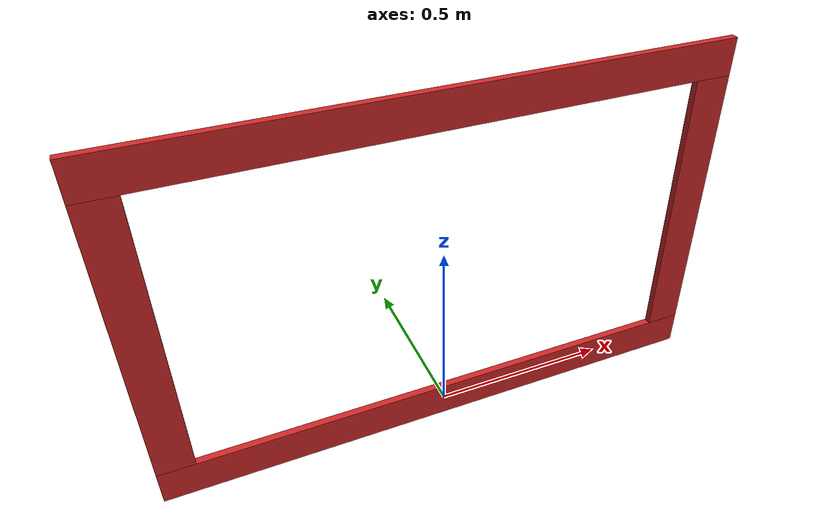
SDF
<?xml version="1.0" ?>
<sdf version="1.0">
  <model name="frame">
    <pose>0 0 0 0 0 0</pose>
    <static>true</static>
    <link name="top">
      <collision name="collision_t">
        <pose frame=''>0 0 0.90 0 -0 0</pose>
        <geometry>
          <box>
              <size>1.60 0.020 0.10</size>
          </box>
        </geometry>
	      <surface>
          <contact>
            <ode>
              <max_vel>0.1</max_vel>
              <min_depth>0.001</min_depth>
            </ode>
          </contact>
        </surface>
      </collision>
      <visual name='visual_t'>
        <pose frame=''>0 0 0.90 0 -0 0</pose>
        <geometry>
          <box>
            <size>1.60 0.02 0.10</size>
          </box>
        </geometry>
        <material>
          <lighting>1</lighting>
          <script>
            <uri>file://media/materials/scripts/gazebo.material</uri>
            <name>Gazebo/Red</name>
          </script>
          <shader type='pixel'>
            <normal_map>__default__</normal_map>
          </shader>
        </material>
        <transparency>0</transparency>
        <cast_shadows>1</cast_shadows>
      </visual>
      <collision name="collision_b">
        <pose frame=''>0 0 0 0 -0 0</pose>
        <geometry>
          <box>
              <size>1.60 0.020 0.10</size>
          </box>
        </geometry>
	      <surface>
          <contact>
            <ode>
              <max_vel>0.1</max_vel>
              <min_depth>0.001</min_depth>
            </ode>
          </contact>
        </surface>
      </collision>
      <visual name='visual_b'>
        <pose frame=''>0 0 0 0 -0 0</pose>
        <geometry>
          <box>
            <size>1.60 0.02 0.10</size>
          </box>
        </geometry>
        <material>
          <lighting>1</lighting>
          <script>
            <uri>file://media/materials/scripts/gazebo.material</uri>
            <name>Gazebo/Red</name>
          </script>
          <shader type='pixel'>
            <normal_map>__default__</normal_map>
          </shader>
        </material>
        <transparency>0</transparency>
        <cast_shadows>1</cast_shadows>
      </visual>
      <collision name="collision_l">
        <pose frame=''>0.75 0 0.45 0 -0 0</pose>
        <geometry>
          <box>
              <size>0.10 0.020 0.8</size>
          </box>
        </geometry>
	      <surface>
          <contact>
            <ode>
              <max_vel>0.1</max_vel>
              <min_depth>0.001</min_depth>
            </ode>
          </contact>
        </surface>
      </collision>
      <visual name='visual_l'>
        <pose frame=''>0.75 0 0.45 0 -0 0</pose>
        <geometry>
          <box>
            <size>0.10 0.02 0.8</size>
          </box>
        </geometry>
        <material>
          <lighting>1</lighting>
          <script>
            <uri>file://media/materials/scripts/gazebo.material</uri>
            <name>Gazebo/Red</name>
          </script>
          <shader type='pixel'>
            <normal_map>__default__</normal_map>
          </shader>
        </material>
        <transparency>0</transparency>
        <cast_shadows>1</cast_shadows>
      </visual>
      <collision name="collision_r">
        <pose frame=''>-0.75 0 0.45 0 -0 0</pose>
        <geometry>
          <box>
              <size>0.10 0.020 0.8</size>
          </box>
        </geometry>
	      <surface>
          <contact>
            <ode>
              <max_vel>0.1</max_vel>
              <min_depth>0.001</min_depth>
            </ode>
          </contact>
        </surface>
      </collision>
      <visual name='visual_r'>
        <pose frame=''>-0.75 0 0.45 0 -0 0</pose>
        <geometry>
          <box>
            <size>0.10 0.02 0.8</size>
          </box>
        </geometry>
        <material>
          <lighting>1</lighting>
          <script>
            <uri>file://media/materials/scripts/gazebo.material</uri>
            <name>Gazebo/Red</name>
          </script>
          <shader type='pixel'>
            <normal_map>__default__</normal_map>
          </shader>
        </material>
        <transparency>0</transparency>
        <cast_shadows>1</cast_shadows>
      </visual>
    </link>

  </model>
</sdf>
